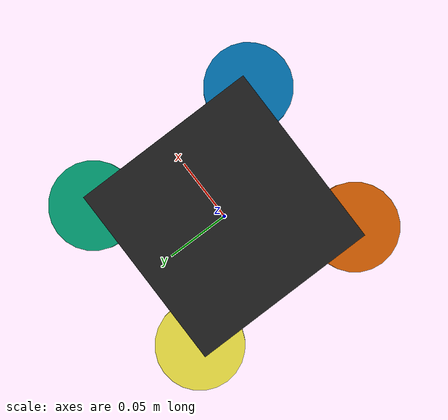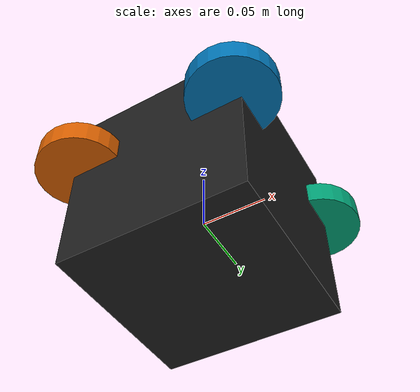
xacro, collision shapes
<?xml version="1.0" ?>
<robot name="tb3_inno" xmlns:xacro="http://ros.org/wiki/xacro">
  <xacro:include filename="$(find tb3_inno_description)/urdf/common_properties.xacro"/>

  <link name="base_footprint"/>

  <joint name="base_joint" type="fixed">
    <parent link="base_footprint"/>
    <child link="base_link"/>
    <origin xyz="0.0 0.0 0.009742" rpy="0 0 0"/>
  </joint>

  <link name="base_link">
    <visual>
      <origin xyz="0.0 0.0 0.0" rpy="0 0 0"/>
      <geometry>
        <mesh filename="package://tb3_inno_description/meshes/inno_base.stl" scale="0.001 0.001 0.001"/>
      </geometry>
      <material name="light_black"/>
    </visual>

    <collision>
      <origin xyz="0.0 0.0 0.0" rpy="0 0 0"/>
      <geometry>
        <box size="0.140 0.140 0.143"/>
      </geometry>
    </collision>

    <inertial>
      <origin xyz="0 0 0" rpy="0 0 0"/>
      <mass value="3.940e-01"/>
      <inertia ixx="1.000e-03" ixy="2.165e-06" ixz="2.305e-06"
               iyy="2.000e-03" iyz="-1.243e-06"
               izz="1.000e-03" />
    </inertial>
  </link>

  <!-- left -->
  <joint name="wheel_left_front_joint" type="continuous">
    <parent link="base_link"/>
    <child link="wheel_left_front_link"/>
    <origin xyz="0.064 0.071 0.023258" rpy="0 0 0"/>
    <axis xyz="0 1 0"/>
  </joint>

  <link name="wheel_left_front_link">
    <visual>
      <origin xyz="0 0 0" rpy="0 0 0"/>
      <geometry>
        <mesh filename="package://tb3_inno_description/meshes/inno_tire_left.stl" scale="0.001 0.001 0.001"/>
      </geometry>
      <material name="dark"/>
    </visual>

    <collision>
      <origin xyz="0 0 0" rpy="0 0 0"/>
      <geometry>
        <cylinder length="0.018" radius="0.033"/>
      </geometry>
    </collision>

    <!-- inertia should be modified. this is tmp values from original copy.-->
    <inertial>
      <origin xyz="0 0 0" />
      <mass value="2.8498940e-02" />
      <inertia ixx="1.1175580e-05" ixy="-4.2369783e-11" ixz="-5.9381719e-09"
               iyy="1.1192413e-05" iyz="-1.4400107e-11"
               izz="2.0712558e-05" />
      </inertial>
  </link>

  <joint name="wheel_left_back_joint" type="continuous">
    <parent link="base_link"/>
    <child link="wheel_left_back_link"/>
    <origin xyz="-0.064 0.071 0.023258" rpy="0 0 0"/>
    <axis xyz="0 1 0"/>
  </joint>

  <link name="wheel_left_back_link">
    <visual>
      <origin xyz="0 0 0" rpy="0 0 0"/>
      <geometry>
        <mesh filename="package://tb3_inno_description/meshes/inno_tire_left.stl" scale="0.001 0.001 0.001"/>
      </geometry>
      <material name="dark"/>
    </visual>

    <collision>
      <origin xyz="0 0 0" rpy="0 0 0"/>
      <geometry>
        <cylinder length="0.018" radius="0.033"/>
      </geometry>
    </collision>

    <!-- inertia should be modified. this is tmp values from original copy.-->
    <inertial>
      <origin xyz="0 0 0" />
      <mass value="2.8498940e-02" />
      <inertia ixx="1.1175580e-05" ixy="-4.2369783e-11" ixz="-5.9381719e-09"
               iyy="1.1192413e-05" iyz="-1.4400107e-11"
               izz="2.0712558e-05" />
      </inertial>
  </link>

  <!-- right -->
  <joint name="wheel_right_front_joint" type="continuous">
    <parent link="base_link"/>
    <child link="wheel_right_front_link"/>
    <origin xyz="0.064 -0.071 0.023258" rpy="0 0 0"/>
    <axis xyz="0 1 0"/>
  </joint>

  <link name="wheel_right_front_link">
    <visual>
      <origin xyz="0 0 0" rpy="0 0 0"/>
      <geometry>
        <mesh filename="package://tb3_inno_description/meshes/inno_tire_right.stl" scale="0.001 0.001 0.001"/>
      </geometry>
      <material name="dark"/>
    </visual>

    <collision>
      <origin xyz="0 0 0" rpy="0 0 0"/>
      <geometry>
        <cylinder length="0.018" radius="0.033"/>
      </geometry>
    </collision>

    <!-- inertia should be modified. this is tmp values from original copy.-->
    <inertial>
      <origin xyz="0 0 0" />
      <mass value="2.8498940e-02" />
      <inertia ixx="1.1175580e-05" ixy="-4.2369783e-11" ixz="-5.9381719e-09"
               iyy="1.1192413e-05" iyz="-1.4400107e-11"
               izz="2.0712558e-05" />
    </inertial>
  </link>

  <joint name="wheel_right_back_joint" type="continuous">
    <parent link="base_link"/>
    <child link="wheel_right_back_link"/>
    <origin xyz="-0.064 -0.071 0.023258" rpy="0 0 0"/>
    <axis xyz="0 1 0"/>
  </joint>

  <link name="wheel_right_back_link">
    <visual>
      <origin xyz="0 0 0" rpy="0 0 0"/>
      <geometry>
        <mesh filename="package://tb3_inno_description/meshes/inno_tire_right.stl" scale="0.001 0.001 0.001"/>
      </geometry>
      <material name="dark"/>
    </visual>

    <collision>
      <origin xyz="0 0 0" rpy="0 0 0"/>
      <geometry>
        <cylinder length="0.018" radius="0.033"/>
      </geometry>
    </collision>

    <!-- inertia should be modified. this is tmp values from original copy.-->
    <inertial>
      <origin xyz="0 0 0" />
      <mass value="2.8498940e-02" />
      <inertia ixx="1.1175580e-05" ixy="-4.2369783e-11" ixz="-5.9381719e-09"
               iyy="1.1192413e-05" iyz="-1.4400107e-11"
               izz="2.0712558e-05" />
      </inertial>
  </link>

<!-- Add imu and L515 -->

<!--                iyy="0.001" iyz="0.0" -->

</robot>
